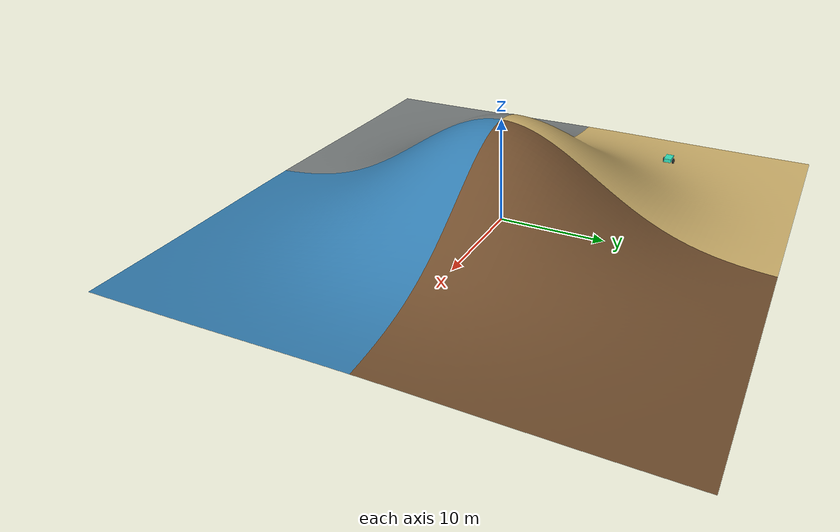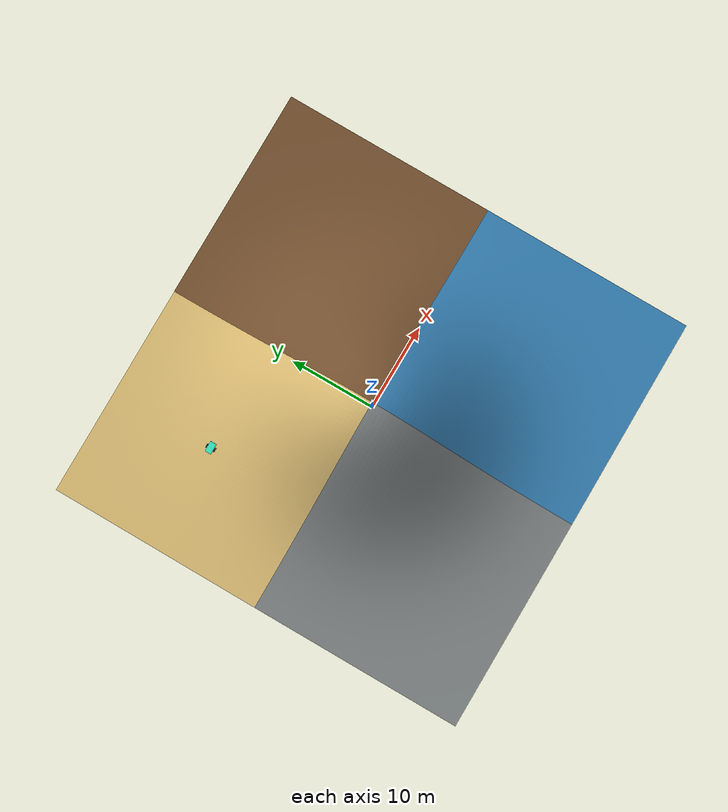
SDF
<?xml version="1.0"?>
<sdf version="1.10">
  <world name="dem_levels_terrain">
    <physics name="default_physics" type="ignored">
      <max_step_size>0.001</max_step_size>
      <real_time_factor>1.0</real_time_factor>
    </physics>

    <plugin filename="gz-sim-physics-system" name="gz::sim::systems::Physics"/>
    <plugin filename="gz-sim-user-commands-system" name="gz::sim::systems::UserCommands"/>
    <plugin filename="gz-sim-scene-broadcaster-system" name="gz::sim::systems::SceneBroadcaster"/>

    <light name="sun" type="directional">
      <cast_shadows>true</cast_shadows>
      <pose>0 0 30 0 0 0</pose>
      <diffuse>0.8 0.8 0.8 1</diffuse>
      <specular>0.2 0.2 0.2 1</specular>
      <direction>-0.5 0.1 -0.9</direction>
    </light>

    <include>
      <name>dem_level_desert</name>
      <uri>model://dem_level_desert</uri>
      <pose>-25 0 0 0 0 0</pose>
    </include>
    <include>
      <name>dem_level_soil</name>
      <uri>model://dem_level_soil</uri>
      <pose>0 0 0 0 0 0</pose>
    </include>
    <include>
      <name>dem_level_rocks</name>
      <uri>model://dem_level_rocks</uri>
      <pose>-25 -25 0 0 0 0</pose>
    </include>
    <include>
      <name>dem_level_water</name>
      <uri>model://dem_level_water</uri>
      <pose>0 -25 0 0 0 0</pose>
    </include>

    <include>
      <name>dem_level_vehicle</name>
      <uri>model://dem_level_vehicle</uri>
      <pose>-12.5 12.5 3.0 0 0 0</pose>
    </include>

    <plugin name="gz::sim" filename="dummy">
      <performer name="dem_vehicle_performer">
        <ref>dem_level_vehicle</ref>
        <geometry>
          <box>
            <size>1.4 1.0 1.0</size>
          </box>
        </geometry>
      </performer>

      <level name="level_desert">
        <pose>-12.5 12.5 5 0 0 0</pose>
        <geometry>
          <box>
            <size>25 25 14</size>
          </box>
        </geometry>
        <buffer>5</buffer>
        <ref>dem_level_desert</ref>
      </level>

      <level name="level_soil">
        <pose>12.5 12.5 5 0 0 0</pose>
        <geometry>
          <box>
            <size>25 25 14</size>
          </box>
        </geometry>
        <buffer>5</buffer>
        <ref>dem_level_soil</ref>
      </level>

      <level name="level_rocks">
        <pose>-12.5 -12.5 5 0 0 0</pose>
        <geometry>
          <box>
            <size>25 25 14</size>
          </box>
        </geometry>
        <buffer>5</buffer>
        <ref>dem_level_rocks</ref>
      </level>

      <level name="level_water">
        <pose>12.5 -12.5 5 0 0 0</pose>
        <geometry>
          <box>
            <size>25 25 14</size>
          </box>
        </geometry>
        <buffer>5</buffer>
        <ref>dem_level_water</ref>
      </level>
    </plugin>

  </world>
</sdf>

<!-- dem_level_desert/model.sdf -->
<sdf version="1.10">
  <model name="dem_level_desert">
    <static>true</static>
    <link name="terrain_link">
      <visual name="terrain_visual">
        <geometry>
          <mesh>
            <uri>model://dem_level_desert/meshes/example_dem_100m_nw.dae</uri>
            <scale>0.5 0.5 1</scale>
          </mesh>
        </geometry>
        <material>
          <diffuse>0.84 0.72 0.44 1</diffuse>
          <pbr>
            <metal>
              <albedo_map>model://dem_level_desert/materials/textures/dem_level_desert.png</albedo_map>
            </metal>
          </pbr>
        </material>
      </visual>
      <collision name="terrain_collision">
        <geometry>
          <mesh>
            <uri>model://dem_level_desert/meshes/example_dem_100m_nw.dae</uri>
            <scale>0.5 0.5 1</scale>
          </mesh>
        </geometry>
      </collision>
    </link>
  </model>
</sdf>

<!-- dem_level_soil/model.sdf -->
<sdf version="1.10">
  <model name="dem_level_soil">
    <static>true</static>
    <link name="terrain_link">
      <visual name="terrain_visual">
        <geometry>
          <mesh>
            <uri>model://dem_level_soil/meshes/example_dem_100m_ne.dae</uri>
            <scale>0.5 0.5 1</scale>
          </mesh>
        </geometry>
        <material>
          <diffuse>0.45 0.31 0.18 1</diffuse>
          <pbr>
            <metal>
              <albedo_map>model://dem_level_soil/materials/textures/dem_level_soil.png</albedo_map>
            </metal>
          </pbr>
        </material>
      </visual>
      <collision name="terrain_collision">
        <geometry>
          <mesh>
            <uri>model://dem_level_soil/meshes/example_dem_100m_ne.dae</uri>
            <scale>0.5 0.5 1</scale>
          </mesh>
        </geometry>
      </collision>
    </link>
  </model>
</sdf>

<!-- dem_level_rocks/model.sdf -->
<sdf version="1.10">
  <model name="dem_level_rocks">
    <static>true</static>
    <link name="terrain_link">
      <visual name="terrain_visual">
        <geometry>
          <mesh>
            <uri>model://dem_level_rocks/meshes/example_dem_100m_sw.dae</uri>
            <scale>0.5 0.5 1</scale>
          </mesh>
        </geometry>
        <material>
          <diffuse>0.48 0.5 0.5 1</diffuse>
          <pbr>
            <metal>
              <albedo_map>model://dem_level_rocks/materials/textures/dem_level_rocks.png</albedo_map>
            </metal>
          </pbr>
        </material>
      </visual>
      <collision name="terrain_collision">
        <geometry>
          <mesh>
            <uri>model://dem_level_rocks/meshes/example_dem_100m_sw.dae</uri>
            <scale>0.5 0.5 1</scale>
          </mesh>
        </geometry>
      </collision>
    </link>
  </model>
</sdf>

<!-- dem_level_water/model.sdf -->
<sdf version="1.10">
  <model name="dem_level_water">
    <static>true</static>
    <link name="terrain_link">
      <visual name="terrain_visual">
        <geometry>
          <mesh>
            <uri>model://dem_level_water/meshes/example_dem_100m_se.dae</uri>
            <scale>0.5 0.5 1</scale>
          </mesh>
        </geometry>
        <material>
          <diffuse>0.2 0.49 0.69 1</diffuse>
          <pbr>
            <metal>
              <albedo_map>model://dem_level_water/materials/textures/dem_level_water.png</albedo_map>
            </metal>
          </pbr>
        </material>
      </visual>
      <collision name="terrain_collision">
        <geometry>
          <mesh>
            <uri>model://dem_level_water/meshes/example_dem_100m_se.dae</uri>
            <scale>0.5 0.5 1</scale>
          </mesh>
        </geometry>
      </collision>
    </link>
  </model>
</sdf>

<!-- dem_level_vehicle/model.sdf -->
<sdf version="1.10">
  <model name="dem_level_vehicle">
    <pose>0 0 0 0 0 0</pose>

    <link name="chassis">
      <pose>0 0 0.45 0 0 0</pose>
      <inertial>
        <mass>2.0</mass>
        <inertia>
          <ixx>0.25</ixx>
          <iyy>0.35</iyy>
          <izz>0.45</izz>
        </inertia>
      </inertial>
      <visual name="visual">
        <geometry>
          <box>
            <size>1.2 0.7 0.35</size>
          </box>
        </geometry>
        <material>
          <ambient>0.2 0.9 0.75 1</ambient>
          <diffuse>0.2 0.9 0.75 1</diffuse>
          <specular>0.1 0.2 0.2 1</specular>
        </material>
      </visual>
      <collision name="collision">
        <geometry>
          <box>
            <size>1.2 0.7 0.35</size>
          </box>
        </geometry>
      </collision>
    </link>

    <link name="left_wheel">
      <pose>0 0.45 0.25 -1.5707 0 0</pose>
      <inertial>
        <mass>0.4</mass>
        <inertia>
          <ixx>0.01</ixx>
          <iyy>0.01</iyy>
          <izz>0.01</izz>
        </inertia>
      </inertial>
      <visual name="visual">
        <geometry>
          <cylinder>
            <radius>0.25</radius>
            <length>0.16</length>
          </cylinder>
        </geometry>
        <material>
          <ambient>0.05 0.05 0.05 1</ambient>
          <diffuse>0.05 0.05 0.05 1</diffuse>
        </material>
      </visual>
      <collision name="collision">
        <geometry>
          <cylinder>
            <radius>0.25</radius>
            <length>0.16</length>
          </cylinder>
        </geometry>
      </collision>
    </link>

    <link name="right_wheel">
      <pose>0 -0.45 0.25 -1.5707 0 0</pose>
      <inertial>
        <mass>0.4</mass>
        <inertia>
          <ixx>0.01</ixx>
          <iyy>0.01</iyy>
          <izz>0.01</izz>
        </inertia>
      </inertial>
      <visual name="visual">
        <geometry>
          <cylinder>
            <radius>0.25</radius>
            <length>0.16</length>
          </cylinder>
        </geometry>
        <material>
          <ambient>0.05 0.05 0.05 1</ambient>
          <diffuse>0.05 0.05 0.05 1</diffuse>
        </material>
      </visual>
      <collision name="collision">
        <geometry>
          <cylinder>
            <radius>0.25</radius>
            <length>0.16</length>
          </cylinder>
        </geometry>
      </collision>
    </link>

    <joint name="left_wheel_joint" type="revolute">
      <parent>chassis</parent>
      <child>left_wheel</child>
      <axis>
        <xyz>0 0 1</xyz>
      </axis>
    </joint>

    <joint name="right_wheel_joint" type="revolute">
      <parent>chassis</parent>
      <child>right_wheel</child>
      <axis>
        <xyz>0 0 1</xyz>
      </axis>
    </joint>

    <plugin filename="gz-sim-diff-drive-system" name="gz::sim::systems::DiffDrive">
      <left_joint>left_wheel_joint</left_joint>
      <right_joint>right_wheel_joint</right_joint>
      <wheel_separation>0.9</wheel_separation>
      <wheel_radius>0.25</wheel_radius>
      <topic>/model/dem_level_vehicle/cmd_vel</topic>
    </plugin>
  </model>
</sdf>
